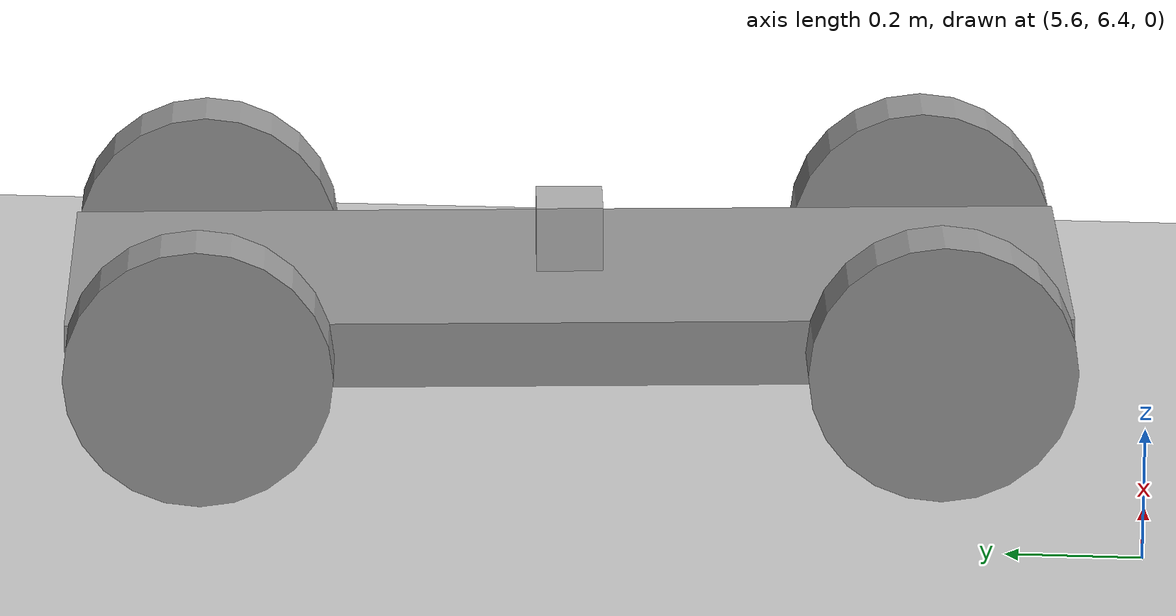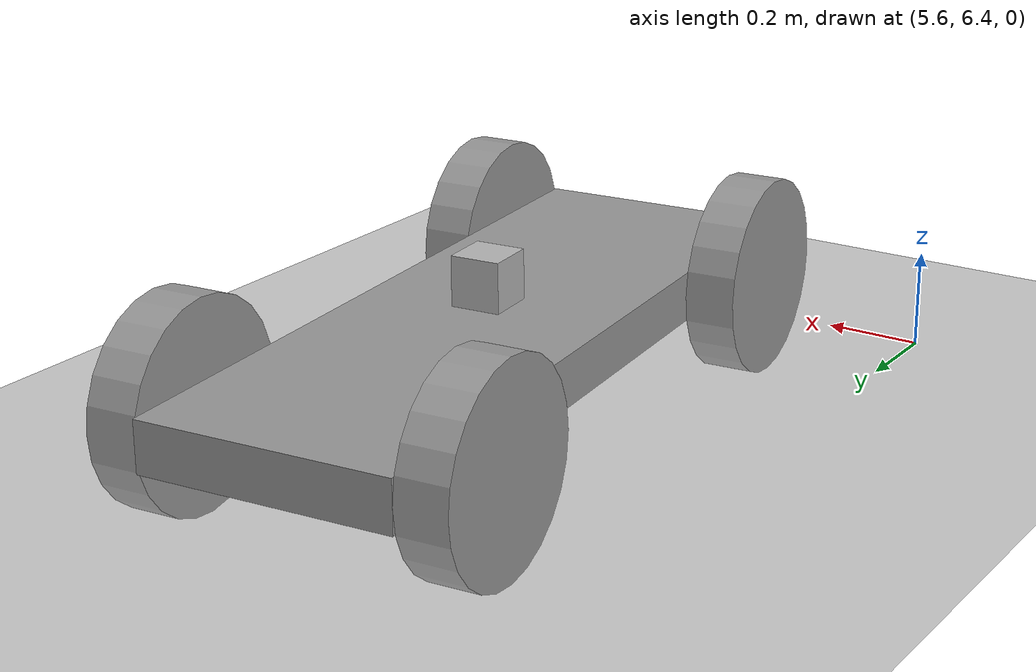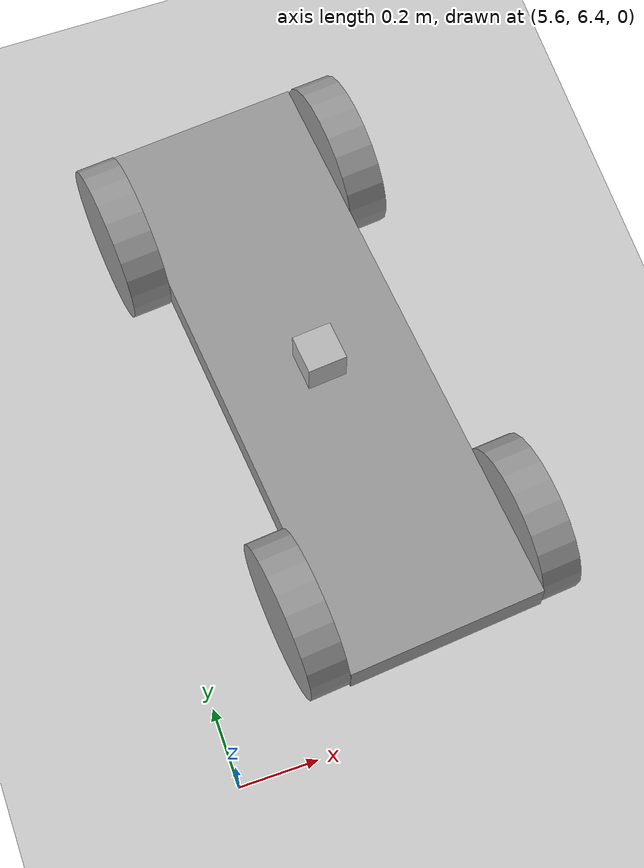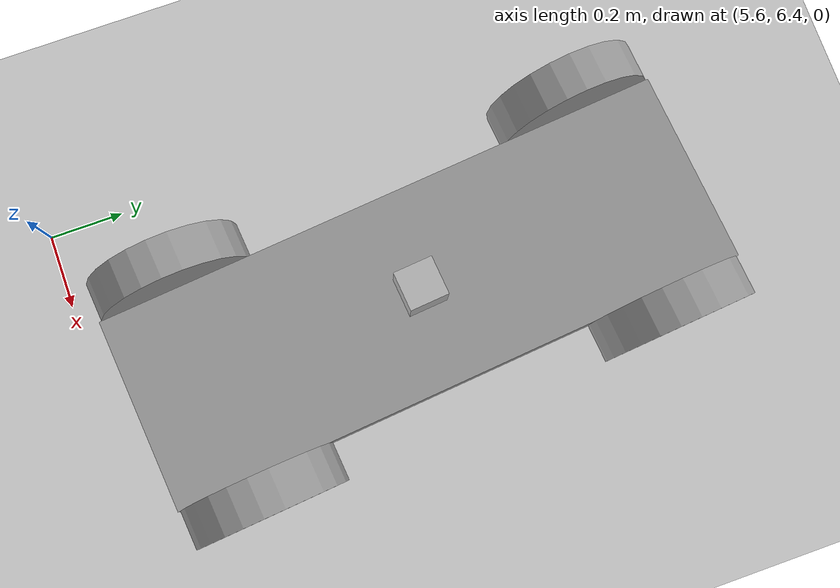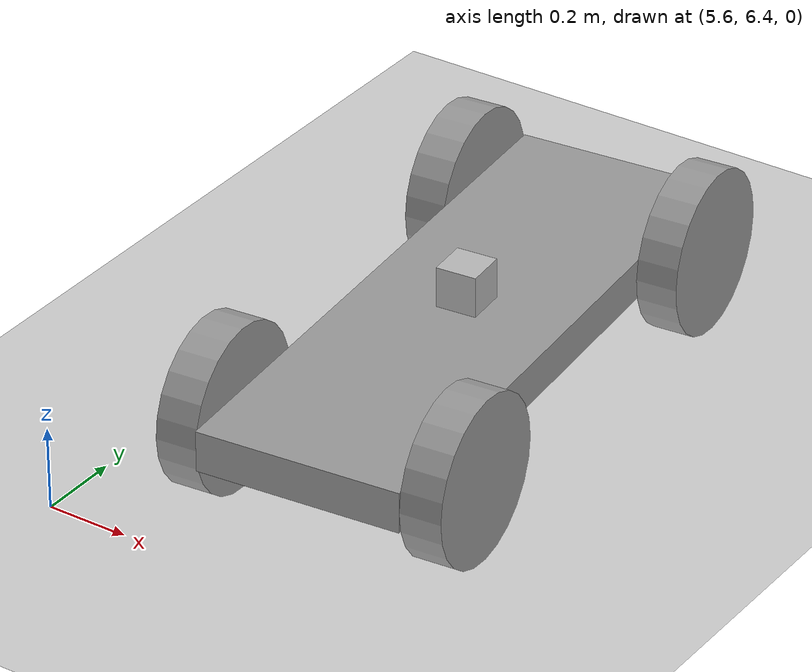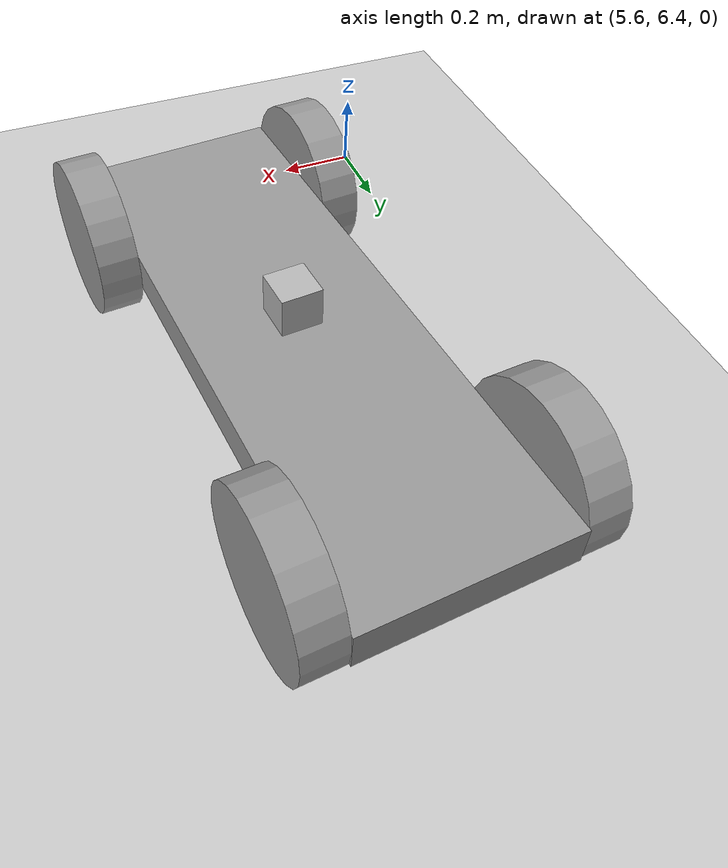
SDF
<sdf version="1.6">
 <world name="default">
  <model name="ground_plane">
   <static>1</static>
   <link name="link">
    <collision name="collision">
     <geometry><plane><normal>0 0 1</normal><size>100 100</size></plane></geometry>
     <surface>
      <contact><collide_bitmask>65535</collide_bitmask></contact>
      <friction><ode><mu>100</mu><mu2>50</mu2></ode></friction>
     </surface>
    </collision>
    <visual name="visual">
     <cast_shadows>0</cast_shadows>
     <geometry><plane><normal>0 0 1</normal><size>100 100</size></plane></geometry>
     <material>
      <script><uri>file://media/materials/scripts/gazebo.material</uri><name>Gazebo/Grey</name></script>
     </material>
    </visual>
   </link>
  </model>
  <model name="MobileRobot_0">
   <link name="link_1">
    <pose>-0.000519 -0.000589 -0.009488 0 -0 0</pose>
    <inertial>
     <mass>1</mass>
     <inertia>
      <ixx>0.166667</ixx>
      <ixy>0</ixy>
      <ixz>0</ixz>
      <iyy>0.166667</iyy>
      <iyz>0</iyz>
      <izz>0.166667</izz>
     </inertia>
    </inertial>
    <visual name="visual">
     <geometry><box><size>1.5 0.5 0.1</size></box></geometry>
     <material>
      <lighting>1</lighting>
      <script><uri>file://media/materials/scripts/gazebo.material</uri><name>Gazebo/Grey</name></script>
      <shader type="pixel"><normal_map>__default__</normal_map></shader>
      <ambient>0.3 0.3 0.3 1</ambient>
      <diffuse>0.7 0.7 0.7 1</diffuse>
      <specular>0.01 0.01 0.01 1</specular>
      <emissive>0 0 0 1</emissive>
     </material>
    </visual>
    <collision name="collision">
     <geometry><box><size>1.5 0.5 0.1</size></box></geometry>
     <surface>
      <friction>
       <ode><mu>1</mu><mu2>1</mu2><fdir1>0 0 0</fdir1><slip1>0</slip1><slip2>0</slip2></ode>
       <torsional>
        <coefficient>1</coefficient>
        <patch_radius>0</patch_radius>
        <surface_radius>0</surface_radius>
        <use_patch_radius>1</use_patch_radius>
        <ode><slip>0</slip></ode>
       </torsional>
      </friction>
      <bounce><restitution_coefficient>0</restitution_coefficient><threshold>1e+06</threshold></bounce>
      <contact>
       <collide_without_contact>0</collide_without_contact>
       <collide_without_contact_bitmask>1</collide_without_contact_bitmask>
       <collide_bitmask>1</collide_bitmask>
       <ode>
        <soft_cfm>0</soft_cfm>
        <soft_erp>0.2</soft_erp>
        <kp>1e+13</kp>
        <kd>1</kd>
        <max_vel>0.01</max_vel>
        <min_depth>0</min_depth>
       </ode>
       <bullet>
        <split_impulse>1</split_impulse>
        <split_impulse_penetration_threshold>-0.01</split_impulse_penetration_threshold>
        <soft_cfm>0</soft_cfm>
        <soft_erp>0.2</soft_erp>
        <kp>1e+13</kp>
        <kd>1</kd>
       </bullet>
      </contact>
     </surface>
    </collision>
   </link>
   <link name="link_2">
    <pose>-0.550519 -0.300608 -0.009488 1.5707 -0 0</pose>
    <inertial>
     <mass>1</mass>
     <inertia><ixx>0.145833</ixx><ixy>0</ixy><ixz>0</ixz><iyy>0.145833</iyy><iyz>0</iyz><izz>0.125</izz></inertia>
    </inertial>
    <visual name="visual">
     <geometry><cylinder><radius>0.2</radius><length>0.1</length></cylinder></geometry>
     <material>
      <lighting>1</lighting>
      <script><uri>file://media/materials/scripts/gazebo.material</uri><name>Gazebo/Grey</name></script>
      <shader type="pixel"><normal_map>__default__</normal_map></shader>
      <ambient>0.3 0.3 0.3 1</ambient>
      <diffuse>0.7 0.7 0.7 1</diffuse>
      <specular>0.01 0.01 0.01 1</specular>
      <emissive>0 0 0 1</emissive>
     </material>
    </visual>
    <collision name="collision">
     <geometry><cylinder><radius>0.2</radius><length>0.1</length></cylinder></geometry>
     <surface>
      <friction>
       <ode><mu>1</mu><mu2>1</mu2><fdir1>0 0 0</fdir1><slip1>0</slip1><slip2>0</slip2></ode>
       <torsional>
        <coefficient>1</coefficient>
        <patch_radius>0</patch_radius>
        <surface_radius>0</surface_radius>
        <use_patch_radius>1</use_patch_radius>
        <ode><slip>0</slip></ode>
       </torsional>
      </friction>
      <bounce><restitution_coefficient>0</restitution_coefficient><threshold>1e+06</threshold></bounce>
      <contact>
       <collide_without_contact>0</collide_without_contact>
       <collide_without_contact_bitmask>1</collide_without_contact_bitmask>
       <collide_bitmask>1</collide_bitmask>
       <ode>
        <soft_cfm>0</soft_cfm>
        <soft_erp>0.2</soft_erp>
        <kp>1e+13</kp>
        <kd>1</kd>
        <max_vel>0.01</max_vel>
        <min_depth>0</min_depth>
       </ode>
       <bullet>
        <split_impulse>1</split_impulse>
        <split_impulse_penetration_threshold>-0.01</split_impulse_penetration_threshold>
        <soft_cfm>0</soft_cfm>
        <soft_erp>0.2</soft_erp>
        <kp>1e+13</kp>
        <kd>1</kd>
       </bullet>
      </contact>
     </surface>
    </collision>
   </link>
   <link name="link_2_clone">
    <pose>-0.550519 0.299431 -0.009488 1.5707 -0 0</pose>
    <inertial>
     <mass>1</mass>
     <inertia><ixx>0.145833</ixx><ixy>0</ixy><ixz>0</ixz><iyy>0.145833</iyy><iyz>0</iyz><izz>0.125</izz></inertia>
    </inertial>
    <visual name="visual">
     <geometry><cylinder><radius>0.2</radius><length>0.1</length></cylinder></geometry>
     <material>
      <lighting>1</lighting>
      <script><uri>file://media/materials/scripts/gazebo.material</uri><name>Gazebo/Grey</name></script>
      <shader type="pixel"><normal_map>__default__</normal_map></shader>
      <ambient>0.3 0.3 0.3 1</ambient>
      <diffuse>0.7 0.7 0.7 1</diffuse>
      <specular>0.01 0.01 0.01 1</specular>
      <emissive>0 0 0 1</emissive>
     </material>
    </visual>
    <collision name="collision">
     <geometry><cylinder><radius>0.2</radius><length>0.1</length></cylinder></geometry>
     <surface>
      <friction>
       <ode><mu>1</mu><mu2>1</mu2><fdir1>0 0 0</fdir1><slip1>0</slip1><slip2>0</slip2></ode>
       <torsional>
        <coefficient>1</coefficient>
        <patch_radius>0</patch_radius>
        <surface_radius>0</surface_radius>
        <use_patch_radius>1</use_patch_radius>
        <ode><slip>0</slip></ode>
       </torsional>
      </friction>
      <bounce><restitution_coefficient>0</restitution_coefficient><threshold>1e+06</threshold></bounce>
      <contact>
       <collide_without_contact>0</collide_without_contact>
       <collide_without_contact_bitmask>1</collide_without_contact_bitmask>
       <collide_bitmask>1</collide_bitmask>
       <ode>
        <soft_cfm>0</soft_cfm>
        <soft_erp>0.2</soft_erp>
        <kp>1e+13</kp>
        <kd>1</kd>
        <max_vel>0.01</max_vel>
        <min_depth>0</min_depth>
       </ode>
       <bullet>
        <split_impulse>1</split_impulse>
        <split_impulse_penetration_threshold>-0.01</split_impulse_penetration_threshold>
        <soft_cfm>0</soft_cfm>
        <soft_erp>0.2</soft_erp>
        <kp>1e+13</kp>
        <kd>1</kd>
       </bullet>
      </contact>
     </surface>
    </collision>
   </link>
   <link name="link_2_clone_0">
    <pose>0.549481 -0.300608 -0.009488 1.5707 -0 0</pose>
    <inertial>
     <mass>1</mass>
     <inertia><ixx>0.145833</ixx><ixy>0</ixy><ixz>0</ixz><iyy>0.145833</iyy><iyz>0</iyz><izz>0.125</izz></inertia>
    </inertial>
    <visual name="visual">
     <geometry><cylinder><radius>0.2</radius><length>0.1</length></cylinder></geometry>
     <material>
      <lighting>1</lighting>
      <script><uri>file://media/materials/scripts/gazebo.material</uri><name>Gazebo/Grey</name></script>
      <shader type="pixel"><normal_map>__default__</normal_map></shader>
      <ambient>0.3 0.3 0.3 1</ambient>
      <diffuse>0.7 0.7 0.7 1</diffuse>
      <specular>0.01 0.01 0.01 1</specular>
      <emissive>0 0 0 1</emissive>
     </material>
    </visual>
    <collision name="collision">
     <geometry><cylinder><radius>0.2</radius><length>0.1</length></cylinder></geometry>
     <surface>
      <friction>
       <ode><mu>1</mu><mu2>1</mu2><fdir1>0 0 0</fdir1><slip1>0</slip1><slip2>0</slip2></ode>
       <torsional>
        <coefficient>1</coefficient>
        <patch_radius>0</patch_radius>
        <surface_radius>0</surface_radius>
        <use_patch_radius>1</use_patch_radius>
        <ode><slip>0</slip></ode>
       </torsional>
      </friction>
      <bounce><restitution_coefficient>0</restitution_coefficient><threshold>1e+06</threshold></bounce>
      <contact>
       <collide_without_contact>0</collide_without_contact>
       <collide_without_contact_bitmask>1</collide_without_contact_bitmask>
       <collide_bitmask>1</collide_bitmask>
       <ode>
        <soft_cfm>0</soft_cfm>
        <soft_erp>0.2</soft_erp>
        <kp>1e+13</kp>
        <kd>1</kd>
        <max_vel>0.01</max_vel>
        <min_depth>0</min_depth>
       </ode>
       <bullet>
        <split_impulse>1</split_impulse>
        <split_impulse_penetration_threshold>-0.01</split_impulse_penetration_threshold>
        <soft_cfm>0</soft_cfm>
        <soft_erp>0.2</soft_erp>
        <kp>1e+13</kp>
        <kd>1</kd>
       </bullet>
      </contact>
     </surface>
    </collision>
   </link>
   <link name="link_2_clone_1">
    <pose>0.549481 0.299431 -0.009488 1.5707 -0 0</pose>
    <inertial>
     <mass>1</mass>
     <inertia><ixx>0.145833</ixx><ixy>0</ixy><ixz>0</ixz><iyy>0.145833</iyy><iyz>0</iyz><izz>0.125</izz></inertia>
    </inertial>
    <visual name="visual">
     <geometry><cylinder><radius>0.2</radius><length>0.1</length></cylinder></geometry>
     <material>
      <lighting>1</lighting>
      <script><uri>file://media/materials/scripts/gazebo.material</uri><name>Gazebo/Grey</name></script>
      <shader type="pixel"><normal_map>__default__</normal_map></shader>
      <ambient>0.3 0.3 0.3 1</ambient>
      <diffuse>0.7 0.7 0.7 1</diffuse>
      <specular>0.01 0.01 0.01 1</specular>
      <emissive>0 0 0 1</emissive>
     </material>
    </visual>
    <collision name="collision">
     <geometry><cylinder><radius>0.2</radius><length>0.1</length></cylinder></geometry>
     <surface>
      <friction>
       <ode><mu>1</mu><mu2>1</mu2><fdir1>0 0 0</fdir1><slip1>0</slip1><slip2>0</slip2></ode>
       <torsional>
        <coefficient>1</coefficient>
        <patch_radius>0</patch_radius>
        <surface_radius>0</surface_radius>
        <use_patch_radius>1</use_patch_radius>
        <ode><slip>0</slip></ode>
       </torsional>
      </friction>
      <bounce><restitution_coefficient>0</restitution_coefficient><threshold>1e+06</threshold></bounce>
      <contact>
       <collide_without_contact>0</collide_without_contact>
       <collide_without_contact_bitmask>1</collide_without_contact_bitmask>
       <collide_bitmask>1</collide_bitmask>
       <ode>
        <soft_cfm>0</soft_cfm>
        <soft_erp>0.2</soft_erp>
        <kp>1e+13</kp>
        <kd>1</kd>
        <max_vel>0.01</max_vel>
        <min_depth>0</min_depth>
       </ode>
       <bullet>
        <split_impulse>1</split_impulse>
        <split_impulse_penetration_threshold>-0.01</split_impulse_penetration_threshold>
        <soft_cfm>0</soft_cfm>
        <soft_erp>0.2</soft_erp>
        <kp>1e+13</kp>
        <kd>1</kd>
       </bullet>
      </contact>
     </surface>
    </collision>
   </link>
   <model name="depth_camera">
    <link name="link">
     <pose>0 0 0.05 0 -0 0</pose>
     <inertial>
      <mass>0.1</mass>
      <inertia>
       <ixx>0.000166667</ixx>
       <iyy>0.000166667</iyy>
       <izz>0.000166667</izz>
       <ixy>0</ixy>
       <ixz>0</ixz>
       <iyz>0</iyz>
      </inertia>
     </inertial>
     <collision name="collision"><geometry><box><size>0.1 0.1 0.1</size></box></geometry></collision>
     <visual name="visual"><geometry><box><size>0.1 0.1 0.1</size></box></geometry></visual>
     <sensor name="camera" type="depth">
      <camera name="__default__">
       <horizontal_fov>1.047</horizontal_fov>
       <image><width>320</width><height>240</height></image>
       <clip><near>0.1</near><far>100</far></clip>
      </camera>
      <always_on>1</always_on>
      <update_rate>30</update_rate>
      <visualize>1</visualize>
     </sensor>
    </link>
    <pose>0.002593 0.002943 0.047439 0 -0 0</pose>
   </model>
   <joint name="link_1_JOINT_0" type="revolute">
    <parent>link_1</parent>
    <child>link_2_clone_0</child>
    <axis>
     <xyz>0 0 1</xyz>
     <use_parent_model_frame>0</use_parent_model_frame>
     <limit>
      <lower>-1.79769e+308</lower>
      <upper>1.79769e+308</upper>
      <effort>-1</effort>
      <velocity>-1</velocity>
     </limit>
     <dynamics>
      <spring_reference>0</spring_reference>
      <spring_stiffness>0</spring_stiffness>
      <damping>0</damping>
     </dynamics>
    </axis>
    <physics>
     <ode><limit><cfm>0</cfm><erp>0.2</erp></limit><suspension><cfm>0</cfm><erp>0.2</erp></suspension></ode>
    </physics>
   </joint>
   <joint name="link_1_JOINT_1" type="revolute">
    <parent>link_1</parent>
    <child>link_2</child>
    <axis>
     <xyz>0 0 1</xyz>
     <use_parent_model_frame>0</use_parent_model_frame>
     <limit>
      <lower>-1.79769e+308</lower>
      <upper>1.79769e+308</upper>
      <effort>-1</effort>
      <velocity>-1</velocity>
     </limit>
     <dynamics>
      <spring_reference>0</spring_reference>
      <spring_stiffness>0</spring_stiffness>
      <damping>0</damping>
     </dynamics>
    </axis>
    <physics>
     <ode><limit><cfm>0</cfm><erp>0.2</erp></limit><suspension><cfm>0</cfm><erp>0.2</erp></suspension></ode>
    </physics>
   </joint>
   <joint name="link_1_JOINT_2" type="revolute">
    <parent>link_1</parent>
    <child>link_2_clone_1</child>
    <axis>
     <xyz>0 0 1</xyz>
     <use_parent_model_frame>0</use_parent_model_frame>
     <limit>
      <lower>-1.79769e+308</lower>
      <upper>1.79769e+308</upper>
      <effort>-1</effort>
      <velocity>-1</velocity>
     </limit>
     <dynamics>
      <spring_reference>0</spring_reference>
      <spring_stiffness>0</spring_stiffness>
      <damping>0</damping>
     </dynamics>
    </axis>
    <physics>
     <ode><limit><cfm>0</cfm><erp>0.2</erp></limit><suspension><cfm>0</cfm><erp>0.2</erp></suspension></ode>
    </physics>
   </joint>
   <joint name="link_1_JOINT_3" type="revolute">
    <parent>link_1</parent>
    <child>link_2_clone</child>
    <axis>
     <xyz>0 0 1</xyz>
     <use_parent_model_frame>0</use_parent_model_frame>
     <limit>
      <lower>-1.79769e+308</lower>
      <upper>1.79769e+308</upper>
      <effort>-1</effort>
      <velocity>-1</velocity>
     </limit>
     <dynamics>
      <spring_reference>0</spring_reference>
      <spring_stiffness>0</spring_stiffness>
      <damping>0</damping>
     </dynamics>
    </axis>
    <physics>
     <ode><limit><cfm>0</cfm><erp>0.2</erp></limit><suspension><cfm>0</cfm><erp>0.2</erp></suspension></ode>
    </physics>
   </joint>
   <joint name="link_1_JOINT_4" type="fixed">
    <parent>link_1</parent>
    <child>depth_camera::link</child>
    <physics>
     <ode><limit><cfm>0</cfm><erp>0.2</erp></limit><suspension><cfm>0</cfm><erp>0.2</erp></suspension></ode>
    </physics>
   </joint>
   <static>0</static>
   <pose>6.09997 7.27736 0.209488 -0 -9e-06 -1.48141</pose>
  </model>
 </world>
</sdf>
